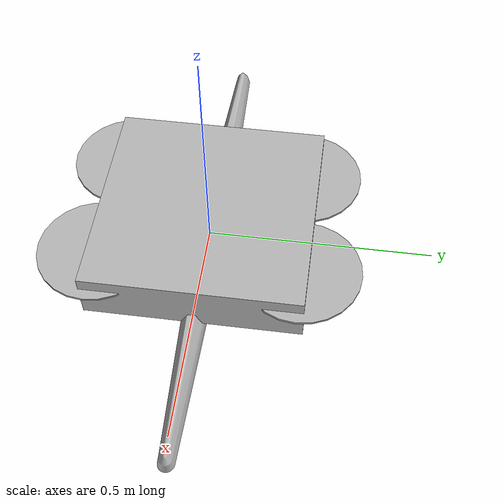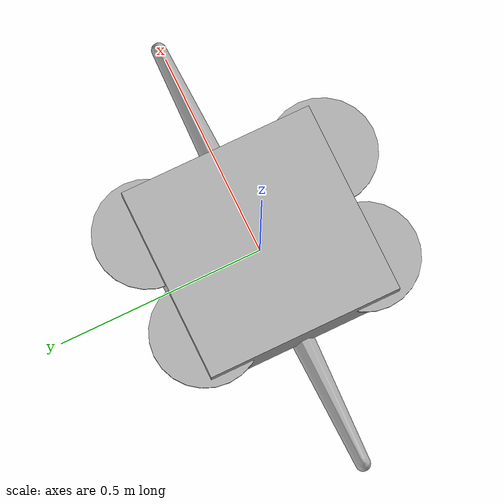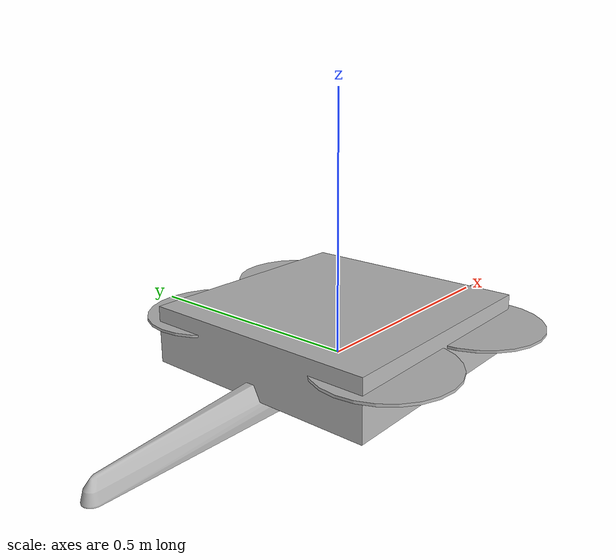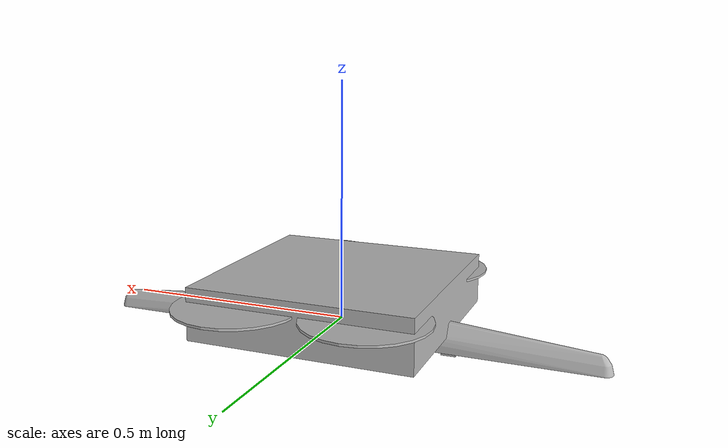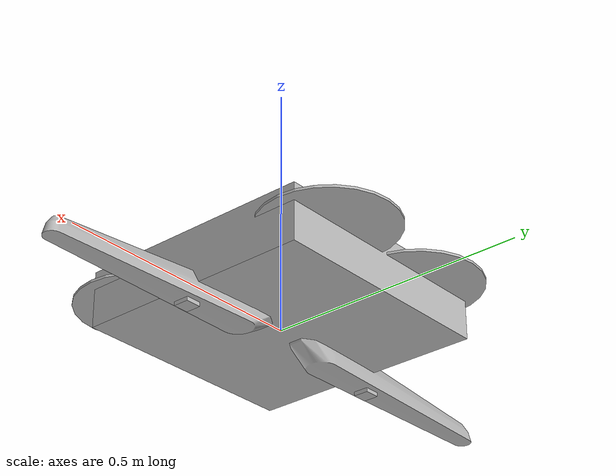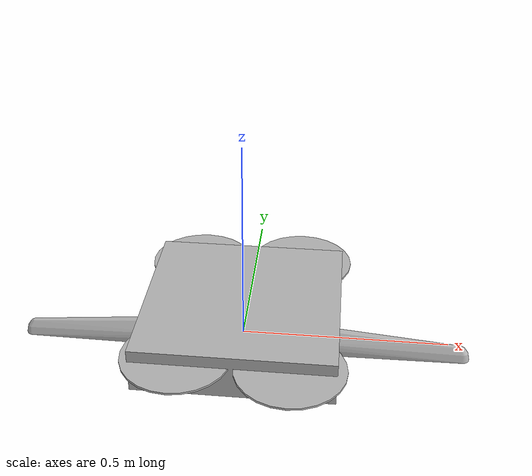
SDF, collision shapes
<?xml version="1.0"?>

<sdf version='1.6'>
  <model name='iris_linear_actuator'>

    <include>
      <uri>model://iris</uri>
      <pose>0 0 0.05 0 0 0</pose>
    </include>

    <!-- front actuator -->
    <include>
      <uri>model://front_actuator</uri>
      <pose>0.0375 0 0 -1.57 0 -1.57</pose>
    </include>

    <joint name="iris_front_actuator_joint" type="fixed">
      <parent>iris::base_link</parent>
      <child>front_actuator::fixed_part_link</child>
    </joint>

    <!-- rear actuator -->
    <include>
      <uri>model://rear_actuator</uri>
      <pose>-0.0375 0 0 -1.57 0 1.57</pose>
    </include>

    <joint name="iris_rear_actuator_joint" type="fixed">
      <parent>iris::base_link</parent>
      <child>rear_actuator::fixed_part_link</child>
    </joint>

  </model>
</sdf>

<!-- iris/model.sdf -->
<!-- DO NOT EDIT: Generated from iris.sdf.jinja -->
<sdf version='1.6'>
  <model name='iris'>
    <link name='base_link'>
      <pose>0 0 0 0 0 0</pose>
      <inertial>
        <pose>0 0 0 0 0 0</pose>
        <mass>1.5</mass>
        <inertia>
          <ixx>0.029125</ixx>
          <ixy>0</ixy>
          <ixz>0</ixz>
          <iyy>0.029125</iyy>
          <iyz>0</iyz>
          <izz>0.055225</izz>
        </inertia>
      </inertial>
      <collision name='base_link_inertia_collision'>
        <pose>0 0 0 0 0 0</pose>
        <geometry>
          <box>
            <size>0.47 0.47 0.11</size>
          </box>
        </geometry>
        <surface>
          <contact>
            <ode>
              <min_depth>0.001</min_depth>
              <max_vel>0</max_vel>
            </ode>
          </contact>
          <friction>
            <ode/>
          </friction>
        </surface>
      </collision>
      <visual name='base_link_inertia_visual'>
        <pose>0 0 0 0 0 0</pose>
        <geometry>
          <mesh>
            <scale>1 1 1</scale>
            <uri>model://iris/meshes/iris.stl</uri>
          </mesh>
        </geometry>
      </visual>
      <gravity>1</gravity>
      <velocity_decay/>
    </link>
    <link name='/imu_link'>
      <pose>0 0 0 0 0 0</pose>
      <inertial>
        <pose>0 0 0 0 0 0</pose>
        <mass>0.015</mass>
        <inertia>
          <ixx>1e-05</ixx>
          <ixy>0</ixy>
          <ixz>0</ixz>
          <iyy>1e-05</iyy>
          <iyz>0</iyz>
          <izz>1e-05</izz>
        </inertia>
      </inertial>
    </link>
    <joint name='/imu_joint' type='revolute'>
      <child>/imu_link</child>
      <parent>base_link</parent>
      <axis>
        <xyz>1 0 0</xyz>
        <limit>
          <lower>0</lower>
          <upper>0</upper>
          <effort>0</effort>
          <velocity>0</velocity>
        </limit>
        <dynamics>
          <spring_reference>0</spring_reference>
          <spring_stiffness>0</spring_stiffness>
        </dynamics>
        <use_parent_model_frame>1</use_parent_model_frame>
      </axis>
    </joint>
    <link name='rotor_0'>
      <pose>0.13 -0.22 0.023 0 0 0</pose>
      <inertial>
        <pose>0 0 0 0 0 0</pose>
        <mass>0.005</mass>
        <inertia>
          <ixx>9.75e-07</ixx>
          <ixy>0</ixy>
          <ixz>0</ixz>
          <iyy>0.000273104</iyy>
          <iyz>0</iyz>
          <izz>0.000274004</izz>
        </inertia>
      </inertial>
      <collision name='rotor_0_collision'>
        <pose>0 0 0 0 0 0</pose>
        <geometry>
          <cylinder>
            <length>0.005</length>
            <radius>0.128</radius>
          </cylinder>
        </geometry>
        <surface>
          <contact>
            <ode/>
          </contact>
          <friction>
            <ode/>
          </friction>
        </surface>
      </collision>
      <visual name='rotor_0_visual'>
        <pose>0 0 0 0 0 0</pose>
        <geometry>
          <mesh>
            <scale>1 1 1</scale>
            <uri>model://iris/meshes/iris_prop_ccw.dae</uri>
          </mesh>
        </geometry>
      </visual>
      <gravity>1</gravity>
      <velocity_decay/>
    </link>
    <joint name='rotor_0_joint' type='revolute'>
      <child>rotor_0</child>
      <parent>base_link</parent>
      <axis>
        <xyz>0 0 1</xyz>
        <limit>
          <lower>-1e+16</lower>
          <upper>1e+16</upper>
        </limit>
        <dynamics>
          <spring_reference>0</spring_reference>
          <spring_stiffness>0</spring_stiffness>
        </dynamics>
        <use_parent_model_frame>1</use_parent_model_frame>
      </axis>
    </joint>
    <link name='rotor_1'>
      <pose>-0.13 0.2 0.023 0 0 0</pose>
      <inertial>
        <pose>0 0 0 0 0 0</pose>
        <mass>0.005</mass>
        <inertia>
          <ixx>9.75e-07</ixx>
          <ixy>0</ixy>
          <ixz>0</ixz>
          <iyy>0.000273104</iyy>
          <iyz>0</iyz>
          <izz>0.000274004</izz>
        </inertia>
      </inertial>
      <collision name='rotor_1_collision'>
        <pose>0 0 0 0 0 0</pose>
        <geometry>
          <cylinder>
            <length>0.005</length>
            <radius>0.128</radius>
          </cylinder>
        </geometry>
        <surface>
          <contact>
            <ode/>
          </contact>
          <friction>
            <ode/>
          </friction>
        </surface>
      </collision>
      <visual name='rotor_1_visual'>
        <pose>0 0 0 0 0 0</pose>
        <geometry>
          <mesh>
            <scale>1 1 1</scale>
            <uri>model://iris/meshes/iris_prop_ccw.dae</uri>
          </mesh>
        </geometry>
      </visual>
      <gravity>1</gravity>
      <velocity_decay/>
    </link>
    <joint name='rotor_1_joint' type='revolute'>
      <child>rotor_1</child>
      <parent>base_link</parent>
      <axis>
        <xyz>0 0 1</xyz>
        <limit>
          <lower>-1e+16</lower>
          <upper>1e+16</upper>
        </limit>
        <dynamics>
          <spring_reference>0</spring_reference>
          <spring_stiffness>0</spring_stiffness>
        </dynamics>
        <use_parent_model_frame>1</use_parent_model_frame>
      </axis>
    </joint>
    <link name='rotor_2'>
      <pose>0.13 0.22 0.023 0 0 0</pose>
      <inertial>
        <pose>0 0 0 0 0 0</pose>
        <mass>0.005</mass>
        <inertia>
          <ixx>9.75e-07</ixx>
          <ixy>0</ixy>
          <ixz>0</ixz>
          <iyy>0.000273104</iyy>
          <iyz>0</iyz>
          <izz>0.000274004</izz>
        </inertia>
      </inertial>
      <collision name='rotor_2_collision'>
        <pose>0 0 0 0 0 0</pose>
        <geometry>
          <cylinder>
            <length>0.005</length>
            <radius>0.128</radius>
          </cylinder>
        </geometry>
        <surface>
          <contact>
            <ode/>
          </contact>
          <friction>
            <ode/>
          </friction>
        </surface>
      </collision>
      <visual name='rotor_2_visual'>
        <pose>0 0 0 0 0 0</pose>
        <geometry>
          <mesh>
            <scale>1 1 1</scale>
            <uri>model://iris/meshes/iris_prop_cw.dae</uri>
          </mesh>
        </geometry>
      </visual>
      <gravity>1</gravity>
      <velocity_decay/>
    </link>
    <joint name='rotor_2_joint' type='revolute'>
      <child>rotor_2</child>
      <parent>base_link</parent>
      <axis>
        <xyz>0 0 1</xyz>
        <limit>
          <lower>-1e+16</lower>
          <upper>1e+16</upper>
        </limit>
        <dynamics>
          <spring_reference>0</spring_reference>
          <spring_stiffness>0</spring_stiffness>
        </dynamics>
        <use_parent_model_frame>1</use_parent_model_frame>
      </axis>
    </joint>
    <link name='rotor_3'>
      <pose>-0.13 -0.2 0.023 0 0 0</pose>
      <inertial>
        <pose>0 0 0 0 0 0</pose>
        <mass>0.005</mass>
        <inertia>
          <ixx>9.75e-07</ixx>
          <ixy>0</ixy>
          <ixz>0</ixz>
          <iyy>0.000273104</iyy>
          <iyz>0</iyz>
          <izz>0.000274004</izz>
        </inertia>
      </inertial>
      <collision name='rotor_3_collision'>
        <pose>0 0 0 0 0 0</pose>
        <geometry>
          <cylinder>
            <length>0.005</length>
            <radius>0.128</radius>
          </cylinder>
        </geometry>
        <surface>
          <contact>
            <ode/>
          </contact>
          <friction>
            <ode/>
          </friction>
        </surface>
      </collision>
      <visual name='rotor_3_visual'>
        <pose>0 0 0 0 0 0</pose>
        <geometry>
          <mesh>
            <scale>1 1 1</scale>
            <uri>model://iris/meshes/iris_prop_cw.dae</uri>
          </mesh>
        </geometry>
      </visual>
      <gravity>1</gravity>
      <velocity_decay/>
    </link>
    <joint name='rotor_3_joint' type='revolute'>
      <child>rotor_3</child>
      <parent>base_link</parent>
      <axis>
        <xyz>0 0 1</xyz>
        <limit>
          <lower>-1e+16</lower>
          <upper>1e+16</upper>
        </limit>
        <dynamics>
          <spring_reference>0</spring_reference>
          <spring_stiffness>0</spring_stiffness>
        </dynamics>
        <use_parent_model_frame>1</use_parent_model_frame>
      </axis>
    </joint>
    <plugin name='rosbag' filename='libgazebo_multirotor_base_plugin.so'>
      <robotNamespace/>
      <linkName>base_link</linkName>
      <rotorVelocitySlowdownSim>10</rotorVelocitySlowdownSim>
    </plugin>
    <plugin name='front_right_motor_model' filename='libgazebo_motor_model.so'>
      <robotNamespace/>
      <jointName>rotor_0_joint</jointName>
      <linkName>rotor_0</linkName>
      <turningDirection>ccw</turningDirection>
      <timeConstantUp>0.0125</timeConstantUp>
      <timeConstantDown>0.025</timeConstantDown>
      <maxRotVelocity>1100</maxRotVelocity>
      <motorConstant>5.84e-06</motorConstant>
      <momentConstant>0.06</momentConstant>
      <commandSubTopic>/gazebo/command/motor_speed</commandSubTopic>
      <motorNumber>0</motorNumber>
      <rotorDragCoefficient>0.000175</rotorDragCoefficient>
      <rollingMomentCoefficient>1e-06</rollingMomentCoefficient>
      <motorSpeedPubTopic>/motor_speed/0</motorSpeedPubTopic>
      <rotorVelocitySlowdownSim>10</rotorVelocitySlowdownSim>
    </plugin>
    <plugin name='back_left_motor_model' filename='libgazebo_motor_model.so'>
      <robotNamespace/>
      <jointName>rotor_1_joint</jointName>
      <linkName>rotor_1</linkName>
      <turningDirection>ccw</turningDirection>
      <timeConstantUp>0.0125</timeConstantUp>
      <timeConstantDown>0.025</timeConstantDown>
      <maxRotVelocity>1100</maxRotVelocity>
      <motorConstant>5.84e-06</motorConstant>
      <momentConstant>0.06</momentConstant>
      <commandSubTopic>/gazebo/command/motor_speed</commandSubTopic>
      <motorNumber>1</motorNumber>
      <rotorDragCoefficient>0.000175</rotorDragCoefficient>
      <rollingMomentCoefficient>1e-06</rollingMomentCoefficient>
      <motorSpeedPubTopic>/motor_speed/1</motorSpeedPubTopic>
      <rotorVelocitySlowdownSim>10</rotorVelocitySlowdownSim>
    </plugin>
    <plugin name='front_left_motor_model' filename='libgazebo_motor_model.so'>
      <robotNamespace/>
      <jointName>rotor_2_joint</jointName>
      <linkName>rotor_2</linkName>
      <turningDirection>cw</turningDirection>
      <timeConstantUp>0.0125</timeConstantUp>
      <timeConstantDown>0.025</timeConstantDown>
      <maxRotVelocity>1100</maxRotVelocity>
      <motorConstant>5.84e-06</motorConstant>
      <momentConstant>0.06</momentConstant>
      <commandSubTopic>/gazebo/command/motor_speed</commandSubTopic>
      <motorNumber>2</motorNumber>
      <rotorDragCoefficient>0.000175</rotorDragCoefficient>
      <rollingMomentCoefficient>1e-06</rollingMomentCoefficient>
      <motorSpeedPubTopic>/motor_speed/2</motorSpeedPubTopic>
      <rotorVelocitySlowdownSim>10</rotorVelocitySlowdownSim>
    </plugin>
    <plugin name='back_right_motor_model' filename='libgazebo_motor_model.so'>
      <robotNamespace/>
      <jointName>rotor_3_joint</jointName>
      <linkName>rotor_3</linkName>
      <turningDirection>cw</turningDirection>
      <timeConstantUp>0.0125</timeConstantUp>
      <timeConstantDown>0.025</timeConstantDown>
      <maxRotVelocity>1100</maxRotVelocity>
      <motorConstant>5.84e-06</motorConstant>
      <momentConstant>0.06</momentConstant>
      <commandSubTopic>/gazebo/command/motor_speed</commandSubTopic>
      <motorNumber>3</motorNumber>
      <rotorDragCoefficient>0.000175</rotorDragCoefficient>
      <rollingMomentCoefficient>1e-06</rollingMomentCoefficient>
      <motorSpeedPubTopic>/motor_speed/3</motorSpeedPubTopic>
      <rotorVelocitySlowdownSim>10</rotorVelocitySlowdownSim>
    </plugin>
    <model name='gps0'>
      <link name='link'>
        <pose>0 0 0 0 0 0</pose>
        <inertial>
          <pose>0 0 0 0 0 0</pose>
          <mass>0.01</mass>
          <inertia>
            <ixx>2.1733e-06</ixx>
            <ixy>0</ixy>
            <ixz>0</ixz>
            <iyy>2.1733e-06</iyy>
            <iyz>0</iyz>
            <izz>1.8e-07</izz>
          </inertia>
        </inertial>
        <visual name='visual'>
          <geometry>
            <cylinder>
              <radius>0.01</radius>
              <length>0.002</length>
            </cylinder>
          </geometry>
        </visual>
        <sensor name='gps' type='gps'>
          <pose>0 0 0 0 0 0</pose>
          <plugin name='gps_plugin' filename='libgazebo_gps_plugin.so'>
            <robotNamespace/>
            <gpsNoise>1</gpsNoise>
            <gpsXYRandomWalk>2.0</gpsXYRandomWalk>
            <gpsZRandomWalk>4.0</gpsZRandomWalk>
            <gpsXYNoiseDensity>0.0002</gpsXYNoiseDensity>
            <gpsZNoiseDensity>0.0004</gpsZNoiseDensity>
            <gpsVXYNoiseDensity>0.2</gpsVXYNoiseDensity>
            <gpsVZNoiseDensity>0.4</gpsVZNoiseDensity>
          </plugin>
        </sensor>
      </link>
    </model>
    <joint name='gps0_joint' type='fixed'>
      <parent>base_link</parent>
      <child>gps0::link</child>
    </joint>
    <plugin name='groundtruth_plugin' filename='libgazebo_groundtruth_plugin.so'>
      <robotNamespace/>
    </plugin>
    <plugin name='magnetometer_plugin' filename='libgazebo_magnetometer_plugin.so'>
      <robotNamespace/>
      <pubRate>100</pubRate>
      <noiseDensity>0.0004</noiseDensity>
      <randomWalk>6.4e-06</randomWalk>
      <biasCorrelationTime>600</biasCorrelationTime>
      <magTopic>/mag</magTopic>
    </plugin>
    <plugin name='barometer_plugin' filename='libgazebo_barometer_plugin.so'>
      <robotNamespace/>
      <pubRate>50</pubRate>
      <baroTopic>/baro</baroTopic>
      <baroDriftPaPerSec>0</baroDriftPaPerSec>
    </plugin>
    <plugin name='mavlink_interface' filename='libgazebo_mavlink_interface.so'>
      <robotNamespace/>
      <imuSubTopic>/imu</imuSubTopic>
      <magSubTopic>/mag</magSubTopic>
      <baroSubTopic>/baro</baroSubTopic>
      <mavlink_addr>INADDR_ANY</mavlink_addr>
      <mavlink_tcp_port>{{ mavlink_tcp_port }}</mavlink_tcp_port>
      <mavlink_udp_port>{{ mavlink_udp_port }}</mavlink_udp_port>
      <serialEnabled>{{ serial_enabled }}</serialEnabled>
      <serialDevice>{{ serial_device }}</serialDevice>
      <baudRate>{{ serial_baudrate }}</baudRate>
      <qgc_addr>INADDR_ANY</qgc_addr>
      <qgc_udp_port>14550</qgc_udp_port>
      <sdk_addr>INADDR_ANY</sdk_addr>
      <sdk_udp_port>14540</sdk_udp_port>
      <hil_mode>{{ hil_mode }}</hil_mode>
      <hil_state_level>0</hil_state_level>
      <send_vision_estimation>0</send_vision_estimation>
      <send_odometry>1</send_odometry>
      <enable_lockstep>1</enable_lockstep>
      <use_tcp>1</use_tcp>
      <motorSpeedCommandPubTopic>/gazebo/command/motor_speed</motorSpeedCommandPubTopic>
      <control_channels>
        <channel name='rotor1'>
          <input_index>0</input_index>
          <input_offset>0</input_offset>
          <input_scaling>1000</input_scaling>
          <zero_position_disarmed>0</zero_position_disarmed>
          <zero_position_armed>100</zero_position_armed>
          <joint_control_type>velocity</joint_control_type>
        </channel>
        <channel name='rotor2'>
          <input_index>1</input_index>
          <input_offset>0</input_offset>
          <input_scaling>1000</input_scaling>
          <zero_position_disarmed>0</zero_position_disarmed>
          <zero_position_armed>100</zero_position_armed>
          <joint_control_type>velocity</joint_control_type>
        </channel>
        <channel name='rotor3'>
          <input_index>2</input_index>
          <input_offset>0</input_offset>
          <input_scaling>1000</input_scaling>
          <zero_position_disarmed>0</zero_position_disarmed>
          <zero_position_armed>100</zero_position_armed>
          <joint_control_type>velocity</joint_control_type>
        </channel>
        <channel name='rotor4'>
          <input_index>3</input_index>
          <input_offset>0</input_offset>
          <input_scaling>1000</input_scaling>
          <zero_position_disarmed>0</zero_position_disarmed>
          <zero_position_armed>100</zero_position_armed>
          <joint_control_type>velocity</joint_control_type>
        </channel>
        <channel name='rotor5'>
          <input_index>4</input_index>
          <input_offset>1</input_offset>
          <input_scaling>324.6</input_scaling>
          <zero_position_disarmed>0</zero_position_disarmed>
          <zero_position_armed>0</zero_position_armed>
          <joint_control_type>velocity</joint_control_type>
          <joint_control_pid>
            <p>0.1</p>
            <i>0</i>
            <d>0</d>
            <iMax>0.0</iMax>
            <iMin>0.0</iMin>
            <cmdMax>2</cmdMax>
            <cmdMin>-2</cmdMin>
          </joint_control_pid>
          <joint_name>zephyr_delta_wing::propeller_joint</joint_name>
        </channel>
        <channel name='rotor6'>
          <input_index>5</input_index>
          <input_offset>0</input_offset>
          <input_scaling>0.524</input_scaling>
          <zero_position_disarmed>0</zero_position_disarmed>
          <zero_position_armed>0</zero_position_armed>
          <joint_control_type>position</joint_control_type>
          <joint_name>zephyr_delta_wing::flap_left_joint</joint_name>
          <joint_control_pid>
            <p>10.0</p>
            <i>0</i>
            <d>0</d>
            <iMax>0</iMax>
            <iMin>0</iMin>
            <cmdMax>20</cmdMax>
            <cmdMin>-20</cmdMin>
          </joint_control_pid>
        </channel>
        <channel name='rotor7'>
          <input_index>6</input_index>
          <input_offset>0</input_offset>
          <input_scaling>0.524</input_scaling>
          <zero_position_disarmed>0</zero_position_disarmed>
          <zero_position_armed>0</zero_position_armed>
          <joint_control_type>position</joint_control_type>
          <joint_name>zephyr_delta_wing::flap_right_joint</joint_name>
          <joint_control_pid>
            <p>10.0</p>
            <i>0</i>
            <d>0</d>
            <iMax>0</iMax>
            <iMin>0</iMin>
            <cmdMax>20</cmdMax>
            <cmdMin>-20</cmdMin>
          </joint_control_pid>
        </channel>
        <channel name='rotor8'>
          <input_index>7</input_index>
          <input_offset>0</input_offset>
          <input_scaling>0.524</input_scaling>
          <zero_position_disarmed>0</zero_position_disarmed>
          <zero_position_armed>0</zero_position_armed>
          <joint_control_type>position</joint_control_type>
        </channel>
      </control_channels>
    </plugin>
    <static>0</static>
    <plugin name='rotors_gazebo_imu_plugin' filename='libgazebo_imu_plugin.so'>
      <robotNamespace/>
      <linkName>/imu_link</linkName>
      <imuTopic>/imu</imuTopic>
      <gyroscopeNoiseDensity>0.00018665</gyroscopeNoiseDensity>
      <gyroscopeRandomWalk>3.8785e-05</gyroscopeRandomWalk>
      <gyroscopeBiasCorrelationTime>1000.0</gyroscopeBiasCorrelationTime>
      <gyroscopeTurnOnBiasSigma>0.0087</gyroscopeTurnOnBiasSigma>
      <accelerometerNoiseDensity>0.00186</accelerometerNoiseDensity>
      <accelerometerRandomWalk>0.006</accelerometerRandomWalk>
      <accelerometerBiasCorrelationTime>300.0</accelerometerBiasCorrelationTime>
      <accelerometerTurnOnBiasSigma>0.196</accelerometerTurnOnBiasSigma>
    </plugin>
  </model>
</sdf>

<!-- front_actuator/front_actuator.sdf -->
<sdf version='1.6'>
  <model name='front_actuator'>
    <link name='fixed_part_link'>
      <pose>0 0 0 0 0 0</pose>
      <inertial>
        <pose>0 0 0 0 0 0</pose>
        <mass>0.151</mass>
        <inertia>
          <ixx>1.733e-3</ixx>
          <ixy>0</ixy>
          <ixz>0</ixz>
          <iyy>1.711E-3</iyy>
          <iyz>-1.007E-4</iyz>
          <izz>4.3106E-5</izz>
        </inertia>
      </inertial>
      <collision name='front_actuator_collision'>
        <pose>0 0 0 0 0 0</pose>
        <geometry>
          <mesh>
            <scale>1 1 1</scale>
            <uri>model://meshes/Assembly_Linear-Actuator-Fixed-Parts_convex-hull.dae</uri>
          </mesh>
        </geometry>
        <surface>
          <contact>
            <ode>
              <min_depth>0.001</min_depth>
              <max_vel>0</max_vel>
            </ode>
          </contact>
          <friction>
            <ode/>
          </friction>
        </surface>
      </collision>
      <visual name='front_actuator_visual'>
        <pose>0 0 0 0 0 0</pose>
        <geometry>
          <mesh>
            <scale>1 1 1</scale>
            <uri>model://meshes/Assembly_Linear-Actuator-Fixed-Parts.obj</uri>
          </mesh>
        </geometry>
      </visual>
      <gravity>1</gravity>
      <velocity_decay/>
    </link>

    <link name='moving_block_link'>
      <!-- defualt pose: 0 0.015 0.17 0 0 0 -->
      <!-- change z-value to change block position on the actuator -->
      <pose>0 0.03 0.2 0 0 0</pose>
      <inertial>
        <pose>0 0 0 0 0 0</pose>
        <mass>0.333</mass>
        <inertia>
          <ixx>5e-05</ixx>
          <ixy>0</ixy>
          <ixz>0</ixz>
          <iyy>5e-05</iyy>
          <iyz>0</iyz>
          <izz>5e-05</izz>
        </inertia>
      </inertial>
      <collision name='moving_block_collision'>
        <pose>0 0 0 0 0 0</pose>
        <geometry>
          <box>
            <size>0.03 0.03 0.03</size>
          </box>
        </geometry>
        <surface>
          <contact>
            <ode>
              <min_depth>0.001</min_depth>
              <max_vel>0</max_vel>
            </ode>
          </contact>
          <friction>
            <ode/>
          </friction>
        </surface>
      </collision>
      <visual name='moving_block_visual'>
        <pose>0 0 0 0 0 0</pose>
        <geometry>
          <box>
            <size>0.03 0.03 0.03</size>
          </box>
        </geometry>
      </visual>
      <gravity>1</gravity>
      <velocity_decay/>
    </link>

    <joint name="front_actuator_joint" type="fixed">
      <parent>fixed_part_link</parent>
      <child>moving_block_link</child>
    </joint>

  </model>
</sdf>

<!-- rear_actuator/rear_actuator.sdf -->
<sdf version='1.6'>
  <model name='rear_actuator'>
    <link name='fixed_part_link'>
      <pose>0 0 0 0 0 0</pose>
      <inertial>
        <pose>0 0 0 0 0 0</pose>
        <mass>0.151</mass>
        <inertia>
          <ixx>1.733e-3</ixx>
          <ixy>0</ixy>
          <ixz>0</ixz>
          <iyy>1.711E-3</iyy>
          <iyz>-1.007E-4</iyz>
          <izz>4.3106E-5</izz>
        </inertia>
      </inertial>
      <collision name='rear_actuator_collision'>
        <pose>0 0 0 0 0 0</pose>
        <geometry>
          <mesh>
            <scale>1 1 1</scale>
            <uri>model://meshes/Assembly_Linear-Actuator-Fixed-Parts_convex-hull.dae</uri>
          </mesh>
        </geometry>
        <surface>
          <contact>
            <ode>
              <min_depth>0.001</min_depth>
              <max_vel>0</max_vel>
            </ode>
          </contact>
          <friction>
            <ode/>
          </friction>
        </surface>
      </collision>
      <visual name='rear_actuator_visual'>
        <pose>0 0 0 0 0 0</pose>
        <geometry>
          <mesh>
            <scale>1 1 1</scale>
            <uri>model://meshes/Assembly_Linear-Actuator-Fixed-Parts.obj</uri>
          </mesh>
        </geometry>
      </visual>
      <gravity>1</gravity>
      <velocity_decay/>
    </link>

    <link name='moving_block_link'>
      <!-- defualt pose: 0 0.015 0.17 0 0 0 -->
      <!-- change z-value to change block position on the actuator -->
      <pose>0 0.03 0.2 0 0 0</pose>
      <inertial>
        <pose>0 0 0 0 0 0</pose>
        <mass>0.333</mass>
        <inertia>
          <ixx>5e-05</ixx>
          <ixy>0</ixy>
          <ixz>0</ixz>
          <iyy>5e-05</iyy>
          <iyz>0</iyz>
          <izz>5e-05</izz>
        </inertia>
      </inertial>
      <collision name='moving_block_collision'>
        <pose>0 0 0 0 0 0</pose>
        <geometry>
          <box>
            <size>0.03 0.03 0.03</size>
          </box>
        </geometry>
        <surface>
          <contact>
            <ode>
              <min_depth>0.001</min_depth>
              <max_vel>0</max_vel>
            </ode>
          </contact>
          <friction>
            <ode/>
          </friction>
        </surface>
      </collision>
      <visual name='moving_block_visual'>
        <pose>0 0 0 0 0 0</pose>
        <geometry>
          <box>
            <size>0.03 0.03 0.03</size>
          </box>
        </geometry>
      </visual>
      <gravity>1</gravity>
      <velocity_decay/>
    </link>

    <joint name="rear_actuator_joint" type="fixed">
      <parent>fixed_part_link</parent>
      <child>moving_block_link</child>
    </joint>

  </model>
</sdf>
